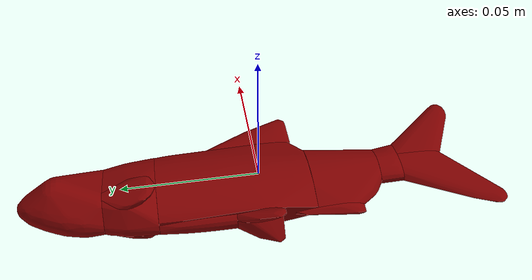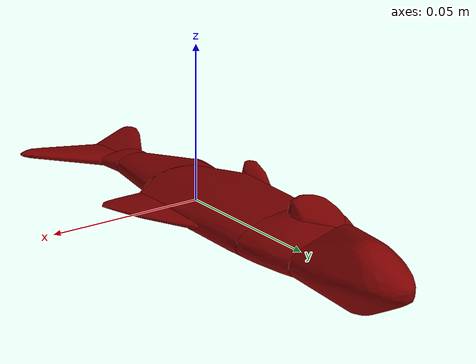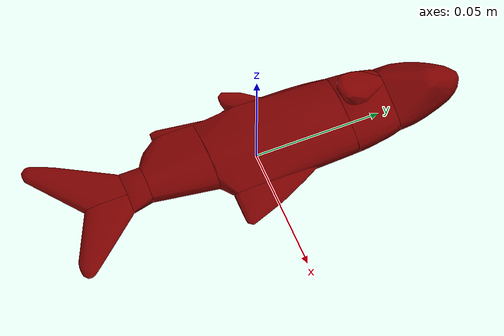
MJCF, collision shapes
<?xml version='1.0' encoding='utf-8'?>
<mujoco model="more_fish_5">
  <asset>
    <mesh file="visual/model_normalized_0.obj" name="model_normalized_0_vis" scale="0.16999999999999998 0.16999999999999998 0.16999999999999998" refquat="0.4999999999999999 0.4999999999999999 -0.49999999999999994 0.49999999999999994" />
    <texture type="2d" name="image0" file="visual/image0.png" />
    <material name="Textured" texture="image0" specular="0.5" shininess="0.324088709" />
    <mesh file="collision/collision_mesh_collision_0.obj" name="fish_collision_mesh_0" scale="0.16999999999999998 0.16999999999999998 0.16999999999999998" refquat="0.4999999999999999 0.4999999999999999 -0.49999999999999994 0.49999999999999994" />
    <mesh file="collision/collision_mesh_collision_1.obj" name="fish_collision_mesh_1" scale="0.16999999999999998 0.16999999999999998 0.16999999999999998" refquat="0.4999999999999999 0.4999999999999999 -0.49999999999999994 0.49999999999999994" />
    <mesh file="collision/collision_mesh_collision_2.obj" name="fish_collision_mesh_2" scale="0.16999999999999998 0.16999999999999998 0.16999999999999998" refquat="0.4999999999999999 0.4999999999999999 -0.49999999999999994 0.49999999999999994" />
    <mesh file="collision/collision_mesh_collision_3.obj" name="fish_collision_mesh_3" scale="0.16999999999999998 0.16999999999999998 0.16999999999999998" refquat="0.4999999999999999 0.4999999999999999 -0.49999999999999994 0.49999999999999994" />
    <mesh file="collision/collision_mesh_collision_4.obj" name="fish_collision_mesh_4" scale="0.16999999999999998 0.16999999999999998 0.16999999999999998" refquat="0.4999999999999999 0.4999999999999999 -0.49999999999999994 0.49999999999999994" />
    <mesh file="collision/collision_mesh_collision_5.obj" name="fish_collision_mesh_5" scale="0.16999999999999998 0.16999999999999998 0.16999999999999998" refquat="0.4999999999999999 0.4999999999999999 -0.49999999999999994 0.49999999999999994" />
    <mesh file="collision/collision_mesh_collision_6.obj" name="fish_collision_mesh_6" scale="0.16999999999999998 0.16999999999999998 0.16999999999999998" refquat="0.4999999999999999 0.4999999999999999 -0.49999999999999994 0.49999999999999994" />
    <mesh file="collision/collision_mesh_collision_7.obj" name="fish_collision_mesh_7" scale="0.16999999999999998 0.16999999999999998 0.16999999999999998" refquat="0.4999999999999999 0.4999999999999999 -0.49999999999999994 0.49999999999999994" />
    <mesh file="collision/collision_mesh_collision_8.obj" name="fish_collision_mesh_8" scale="0.16999999999999998 0.16999999999999998 0.16999999999999998" refquat="0.4999999999999999 0.4999999999999999 -0.49999999999999994 0.49999999999999994" />
    <mesh file="collision/collision_mesh_collision_9.obj" name="fish_collision_mesh_9" scale="0.16999999999999998 0.16999999999999998 0.16999999999999998" refquat="0.4999999999999999 0.4999999999999999 -0.49999999999999994 0.49999999999999994" />
    <mesh file="collision/collision_mesh_collision_10.obj" name="fish_collision_mesh_10" scale="0.16999999999999998 0.16999999999999998 0.16999999999999998" refquat="0.4999999999999999 0.4999999999999999 -0.49999999999999994 0.49999999999999994" />
    <mesh file="collision/collision_mesh_collision_11.obj" name="fish_collision_mesh_11" scale="0.16999999999999998 0.16999999999999998 0.16999999999999998" refquat="0.4999999999999999 0.4999999999999999 -0.49999999999999994 0.49999999999999994" />
    <mesh file="collision/collision_mesh_collision_12.obj" name="fish_collision_mesh_12" scale="0.16999999999999998 0.16999999999999998 0.16999999999999998" refquat="0.4999999999999999 0.4999999999999999 -0.49999999999999994 0.49999999999999994" />
    <mesh file="collision/collision_mesh_collision_13.obj" name="fish_collision_mesh_13" scale="0.16999999999999998 0.16999999999999998 0.16999999999999998" refquat="0.4999999999999999 0.4999999999999999 -0.49999999999999994 0.49999999999999994" />
    </asset>
  <default>
    <default class="region">
      <geom group="1" conaffinity="0" contype="0" rgba="0 1 0 0" />
      </default>
    <default class="collision">
      <geom group="0" rgba="0.5 0 0 0.5" density="1000.0" />
      </default>
    </default>
  <worldbody>
    <body>
      <body name="object">
        <geom solimp="0.998 0.998 0.001" solref="0.001 1" density="100" friction="0.95 0.3 0.1" type="mesh" mesh="model_normalized_0_vis" conaffinity="0" contype="0" group="1" material="Textured" />
        <geom class="region" name="reg_bbox" type="box" pos="0.00024519055856339926 4.9095180815938994e-05 -1.4976533489505922e-05" size="0.02672039684699988 0.08445727173343849 0.010344374437153482" />
        <geom mesh="fish_collision_mesh_0" type="mesh" class="collision" />
        <geom mesh="fish_collision_mesh_1" type="mesh" class="collision" />
        <geom mesh="fish_collision_mesh_2" type="mesh" class="collision" />
        <geom mesh="fish_collision_mesh_3" type="mesh" class="collision" />
        <geom mesh="fish_collision_mesh_4" type="mesh" class="collision" />
        <geom mesh="fish_collision_mesh_5" type="mesh" class="collision" />
        <geom mesh="fish_collision_mesh_6" type="mesh" class="collision" />
        <geom mesh="fish_collision_mesh_7" type="mesh" class="collision" />
        <geom mesh="fish_collision_mesh_8" type="mesh" class="collision" />
        <geom mesh="fish_collision_mesh_9" type="mesh" class="collision" />
        <geom mesh="fish_collision_mesh_10" type="mesh" class="collision" />
        <geom mesh="fish_collision_mesh_11" type="mesh" class="collision" />
        <geom mesh="fish_collision_mesh_12" type="mesh" class="collision" />
        <geom mesh="fish_collision_mesh_13" type="mesh" class="collision" />
        </body>
      <site rgba="0 0 0 0" size="0.005" pos="0 0 -0.010359351" name="bottom_site" /><site rgba="0 0 0 0" size="0.005" pos="0 0 0.010329398" name="top_site" /><site rgba="0 0 0 0" size="0.005" pos="0.084506367 0.084506367 0" name="horizontal_radius_site" /></body>
    </worldbody>
  </mujoco>
